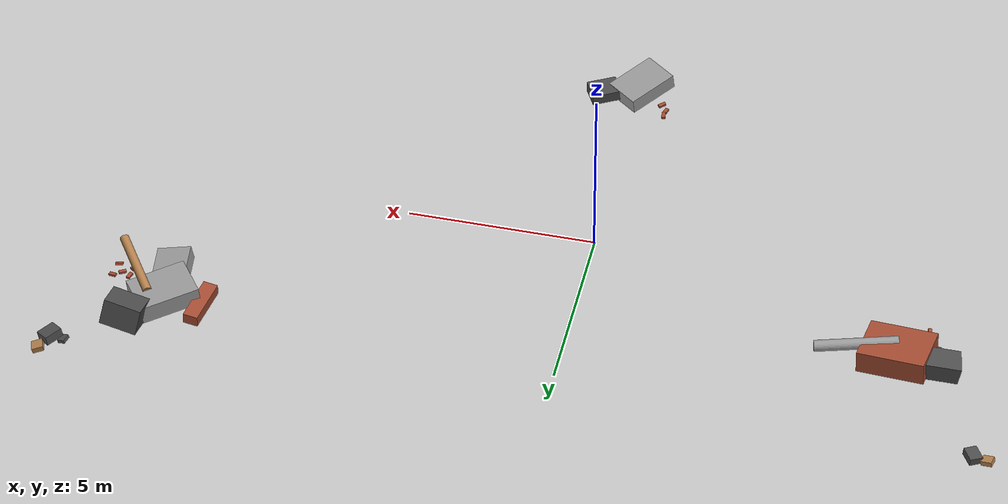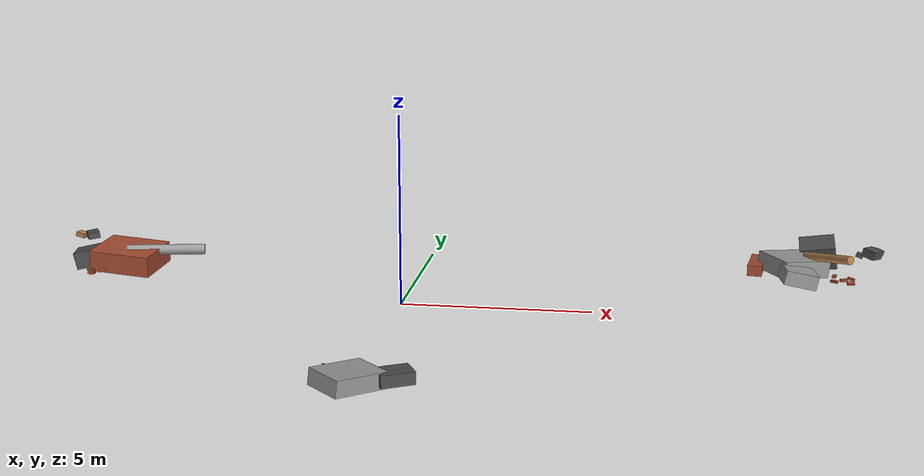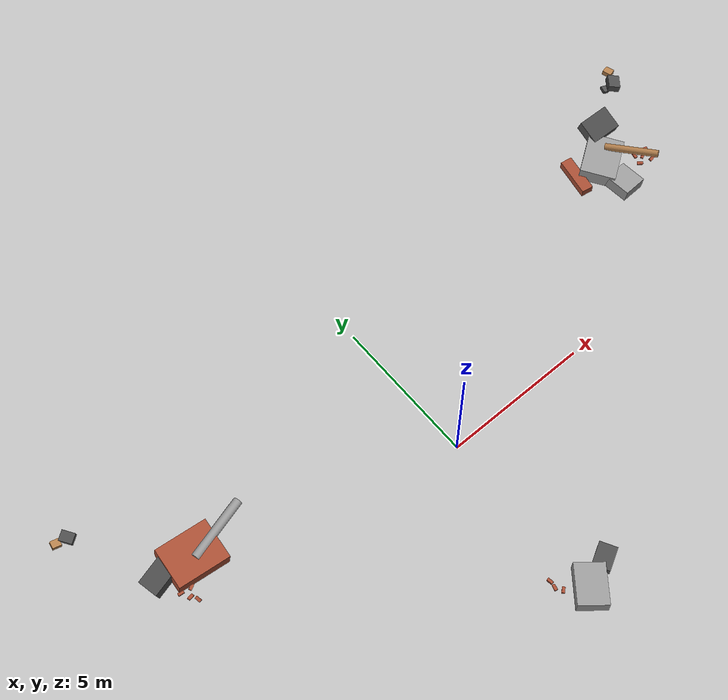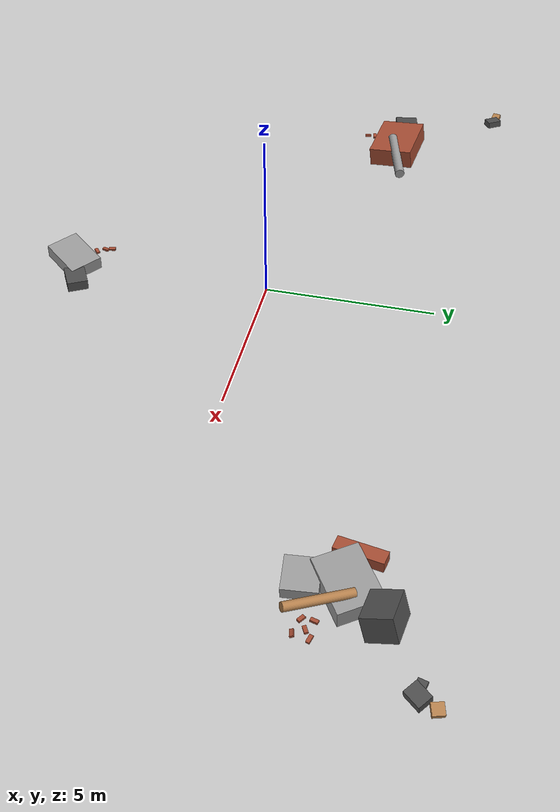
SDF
<sdf version="1.5">
 <world name="default">
  <include><uri>model://sun</uri></include>
  <physics name="default_physics" default="0" type="ode">
   <gravity>0 0 -9.8066</gravity>
   <ode>
    <solver>
     <type>quick</type>
     <iters>10</iters>
     <sor>1.3</sor>
     <use_dynamic_moi_rescaling>0</use_dynamic_moi_rescaling>
    </solver>
    <constraints>
     <cfm>0</cfm>
     <erp>0.2</erp>
     <contact_max_correcting_vel>100</contact_max_correcting_vel>
     <contact_surface_layer>0.001</contact_surface_layer>
    </constraints>
   </ode>
   <max_step_size>0.004</max_step_size>
   <real_time_factor>1</real_time_factor>
   <real_time_update_rate>250</real_time_update_rate>
   <magnetic_field>6.0e-6 2.3e-5 -4.2e-5</magnetic_field>
  </physics>
  <model name="rubble_pile_a">
   <static>true</static>
   <pose>10.5 4.5 0 0 0 0.4</pose>
   <link name="link">
    <collision name="c1">
     <pose>0 0 0.25 0.05 0.1 0.2</pose>
     <geometry><box><size>1.6 1.2 0.5</size></box></geometry>
    </collision>
    <visual name="v1">
     <pose>0 0 0.25 0.05 0.1 0.2</pose>
     <geometry><box><size>1.6 1.2 0.5</size></box></geometry>
     <material><script><name>Gazebo/Grey</name></script></material>
    </visual>
    <collision name="c2">
     <pose>1.1 0.6 0.35 0.3 -0.15 -0.5</pose>
     <geometry><box><size>1.0 0.8 0.7</size></box></geometry>
    </collision>
    <visual name="v2">
     <pose>1.1 0.6 0.35 0.3 -0.15 -0.5</pose>
     <geometry><box><size>1.0 0.8 0.7</size></box></geometry>
     <material><script><name>Gazebo/DarkGrey</name></script></material>
    </visual>
    <collision name="c3">
     <pose>-0.9 0.5 0.15 0 0 1.0</pose>
     <geometry><box><size>1.3 0.4 0.3</size></box></geometry>
    </collision>
    <visual name="v3">
     <pose>-0.9 0.5 0.15 0 0 1.0</pose>
     <geometry><box><size>1.3 0.4 0.3</size></box></geometry>
     <material><script><name>Gazebo/Bricks</name></script></material>
    </visual>
    <collision name="c4">
     <pose>-0.4 -1.0 0.2 0 0.2 -0.3</pose>
     <geometry><box><size>0.9 0.9 0.4</size></box></geometry>
    </collision>
    <visual name="v4">
     <pose>-0.4 -1.0 0.2 0 0.2 -0.3</pose>
     <geometry><box><size>0.9 0.9 0.4</size></box></geometry>
     <material><script><name>Gazebo/Grey</name></script></material>
    </visual>
    <collision name="c5">
     <pose>0.6 -0.8 0.6 1.4 0 0.2</pose>
     <geometry><cylinder><radius>0.12</radius><length>1.8</length></cylinder></geometry>
    </collision>
    <visual name="v5">
     <pose>0.6 -0.8 0.6 1.4 0 0.2</pose>
     <geometry><cylinder><radius>0.12</radius><length>1.8</length></cylinder></geometry>
     <material><script><name>Gazebo/Wood</name></script></material>
    </visual>
   </link>
  </model>
  <model name="rubble_pile_b">
   <static>true</static>
   <pose>-8.5 2.5 0 0 0 -0.6</pose>
   <link name="link">
    <collision name="c1">
     <pose>0 0 0.3 0.1 0.05 0.5</pose>
     <geometry><box><size>1.8 1.4 0.6</size></box></geometry>
    </collision>
    <visual name="v1">
     <pose>0 0 0.3 0.1 0.05 0.5</pose>
     <geometry><box><size>1.8 1.4 0.6</size></box></geometry>
     <material><script><name>Gazebo/Bricks</name></script></material>
    </visual>
    <collision name="c2">
     <pose>-1.0 -0.5 0.25 0 -0.2 0.8</pose>
     <geometry><box><size>1.1 0.7 0.5</size></box></geometry>
    </collision>
    <visual name="v2">
     <pose>-1.0 -0.5 0.25 0 -0.2 0.8</pose>
     <geometry><box><size>1.1 0.7 0.5</size></box></geometry>
     <material><script><name>Gazebo/DarkGrey</name></script></material>
    </visual>
    <collision name="c3">
     <pose>0.8 0.7 0.5 1.55 0 -0.7</pose>
     <geometry><cylinder><radius>0.15</radius><length>2.2</length></cylinder></geometry>
    </collision>
    <visual name="v3">
     <pose>0.8 0.7 0.5 1.55 0 -0.7</pose>
     <geometry><cylinder><radius>0.15</radius><length>2.2</length></cylinder></geometry>
     <material><script><name>Gazebo/Grey</name></script></material>
    </visual>
   </link>
  </model>
  <model name="rubble_pile_c">
   <static>true</static>
   <pose>0 -6 0 0 0 0.9</pose>
   <link name="link">
    <collision name="c1">
     <pose>0 0 0.2 0.05 0.1 0</pose>
     <geometry><box><size>1.4 1.0 0.4</size></box></geometry>
    </collision>
    <visual name="v1">
     <pose>0 0 0.2 0.05 0.1 0</pose>
     <geometry><box><size>1.4 1.0 0.4</size></box></geometry>
     <material><script><name>Gazebo/Grey</name></script></material>
    </visual>
    <collision name="c2">
     <pose>0.9 -0.5 0.15 0 0 -0.4</pose>
     <geometry><box><size>0.8 0.6 0.3</size></box></geometry>
    </collision>
    <visual name="v2">
     <pose>0.9 -0.5 0.15 0 0 -0.4</pose>
     <geometry><box><size>0.8 0.6 0.3</size></box></geometry>
     <material><script><name>Gazebo/DarkGrey</name></script></material>
    </visual>
   </link>
  </model>
  <model name="bricks_scatter_a">
   <static>true</static>
   <pose>11.8 3.8 0 0 0 0.2</pose>
   <link name="link">
    <collision name="b1">
     <pose>0 0 0.03 0.1 0 0.3</pose>
     <geometry><box><size>0.2 0.1 0.06</size></box></geometry>
    </collision>
    <visual name="b1">
     <pose>0 0 0.03 0.1 0 0.3</pose>
     <geometry><box><size>0.2 0.1 0.06</size></box></geometry>
     <material><script><name>Gazebo/Bricks</name></script></material>
    </visual>
    <collision name="b2">
     <pose>0.25 0.1 0.03 0 0.2 -0.5</pose>
     <geometry><box><size>0.2 0.1 0.06</size></box></geometry>
    </collision>
    <visual name="b2">
     <pose>0.25 0.1 0.03 0 0.2 -0.5</pose>
     <geometry><box><size>0.2 0.1 0.06</size></box></geometry>
     <material><script><name>Gazebo/Bricks</name></script></material>
    </visual>
    <collision name="b3">
     <pose>-0.2 0.2 0.09 0 0 1.1</pose>
     <geometry><box><size>0.2 0.1 0.06</size></box></geometry>
    </collision>
    <visual name="b3">
     <pose>-0.2 0.2 0.09 0 0 1.1</pose>
     <geometry><box><size>0.2 0.1 0.06</size></box></geometry>
     <material><script><name>Gazebo/Bricks</name></script></material>
    </visual>
    <collision name="b4">
     <pose>0.1 -0.3 0.03 0.4 0 0</pose>
     <geometry><box><size>0.2 0.1 0.06</size></box></geometry>
    </collision>
    <visual name="b4">
     <pose>0.1 -0.3 0.03 0.4 0 0</pose>
     <geometry><box><size>0.2 0.1 0.06</size></box></geometry>
     <material><script><name>Gazebo/Bricks</name></script></material>
    </visual>
    <collision name="b5">
     <pose>-0.3 -0.1 0.03 0 0 -0.8</pose>
     <geometry><box><size>0.2 0.1 0.06</size></box></geometry>
    </collision>
    <visual name="b5">
     <pose>-0.3 -0.1 0.03 0 0 -0.8</pose>
     <geometry><box><size>0.2 0.1 0.06</size></box></geometry>
     <material><script><name>Gazebo/Bricks</name></script></material>
    </visual>
   </link>
  </model>
  <model name="bricks_scatter_b">
   <static>true</static>
   <pose>-9.3 1.6 0 0 0 -0.4</pose>
   <link name="link">
    <collision name="b1">
     <pose>0 0 0.03 0 0.1 0.6</pose>
     <geometry><box><size>0.2 0.1 0.06</size></box></geometry>
    </collision>
    <visual name="b1">
     <pose>0 0 0.03 0 0.1 0.6</pose>
     <geometry><box><size>0.2 0.1 0.06</size></box></geometry>
     <material><script><name>Gazebo/Bricks</name></script></material>
    </visual>
    <collision name="b2">
     <pose>0.2 -0.15 0.09 0.2 0 -1.0</pose>
     <geometry><box><size>0.2 0.1 0.06</size></box></geometry>
    </collision>
    <visual name="b2">
     <pose>0.2 -0.15 0.09 0.2 0 -1.0</pose>
     <geometry><box><size>0.2 0.1 0.06</size></box></geometry>
     <material><script><name>Gazebo/Bricks</name></script></material>
    </visual>
    <collision name="b3">
     <pose>-0.25 0.2 0.03 0 0 0.3</pose>
     <geometry><box><size>0.2 0.1 0.06</size></box></geometry>
    </collision>
    <visual name="b3">
     <pose>-0.25 0.2 0.03 0 0 0.3</pose>
     <geometry><box><size>0.2 0.1 0.06</size></box></geometry>
     <material><script><name>Gazebo/Bricks</name></script></material>
    </visual>
    <collision name="b4">
     <pose>0.1 0.3 0.03 0.3 0 0.9</pose>
     <geometry><box><size>0.2 0.1 0.06</size></box></geometry>
    </collision>
    <visual name="b4">
     <pose>0.1 0.3 0.03 0.3 0 0.9</pose>
     <geometry><box><size>0.2 0.1 0.06</size></box></geometry>
     <material><script><name>Gazebo/Bricks</name></script></material>
    </visual>
   </link>
  </model>
  <model name="bricks_scatter_c">
   <static>true</static>
   <pose>-0.8 -5.3 0 0 0 1.3</pose>
   <link name="link">
    <collision name="b1">
     <pose>0 0 0.03 0 0 0</pose>
     <geometry><box><size>0.2 0.1 0.06</size></box></geometry>
    </collision>
    <visual name="b1">
     <pose>0 0 0.03 0 0 0</pose>
     <geometry><box><size>0.2 0.1 0.06</size></box></geometry>
     <material><script><name>Gazebo/Bricks</name></script></material>
    </visual>
    <collision name="b2">
     <pose>0.22 0.05 0.09 0.15 0 0.4</pose>
     <geometry><box><size>0.2 0.1 0.06</size></box></geometry>
    </collision>
    <visual name="b2">
     <pose>0.22 0.05 0.09 0.15 0 0.4</pose>
     <geometry><box><size>0.2 0.1 0.06</size></box></geometry>
     <material><script><name>Gazebo/Bricks</name></script></material>
    </visual>
    <collision name="b3">
     <pose>-0.18 -0.2 0.03 0 0.1 -0.6</pose>
     <geometry><box><size>0.2 0.1 0.06</size></box></geometry>
    </collision>
    <visual name="b3">
     <pose>-0.18 -0.2 0.03 0 0.1 -0.6</pose>
     <geometry><box><size>0.2 0.1 0.06</size></box></geometry>
     <material><script><name>Gazebo/Bricks</name></script></material>
    </visual>
   </link>
  </model>
  <model name="rubbish_pile_a">
   <static>true</static>
   <pose>13 6.5 0 0 0 0.5</pose>
   <link name="link">
    <collision name="r1">
     <pose>0 0 0.12 0.2 0.1 0.4</pose>
     <geometry><box><size>0.5 0.4 0.25</size></box></geometry>
    </collision>
    <visual name="r1">
     <pose>0 0 0.12 0.2 0.1 0.4</pose>
     <geometry><box><size>0.5 0.4 0.25</size></box></geometry>
     <material><script><name>Gazebo/DarkGrey</name></script></material>
    </visual>
    <collision name="r2">
     <pose>0.4 0.3 0.08 0 0.3 -0.2</pose>
     <geometry><box><size>0.3 0.3 0.15</size></box></geometry>
    </collision>
    <visual name="r2">
     <pose>0.4 0.3 0.08 0 0.3 -0.2</pose>
     <geometry><box><size>0.3 0.3 0.15</size></box></geometry>
     <material><script><name>Gazebo/Wood</name></script></material>
    </visual>
    <collision name="r3">
     <pose>-0.3 0.2 0.05 0.3 0 0.8</pose>
     <geometry><box><size>0.25 0.2 0.1</size></box></geometry>
    </collision>
    <visual name="r3">
     <pose>-0.3 0.2 0.05 0.3 0 0.8</pose>
     <geometry><box><size>0.25 0.2 0.1</size></box></geometry>
     <material><script><name>Gazebo/DarkGrey</name></script></material>
    </visual>
   </link>
  </model>
  <model name="rubbish_pile_b">
   <static>true</static>
   <pose>-11 5.5 0 0 0 -0.7</pose>
   <link name="link">
    <collision name="r1">
     <pose>0 0 0.1 0.1 0 -0.3</pose>
     <geometry><box><size>0.45 0.35 0.2</size></box></geometry>
    </collision>
    <visual name="r1">
     <pose>0 0 0.1 0.1 0 -0.3</pose>
     <geometry><box><size>0.45 0.35 0.2</size></box></geometry>
     <material><script><name>Gazebo/DarkGrey</name></script></material>
    </visual>
    <collision name="r2">
     <pose>-0.35 -0.2 0.07 0 0.2 0.5</pose>
     <geometry><box><size>0.3 0.25 0.14</size></box></geometry>
    </collision>
    <visual name="r2">
     <pose>-0.35 -0.2 0.07 0 0.2 0.5</pose>
     <geometry><box><size>0.3 0.25 0.14</size></box></geometry>
     <material><script><name>Gazebo/Wood</name></script></material>
    </visual>
   </link>
  </model>
 </world>
</sdf>
